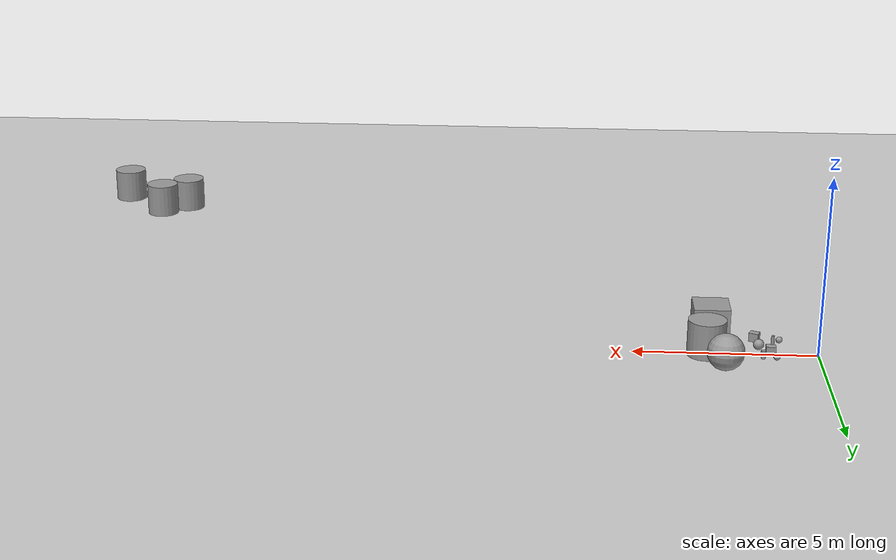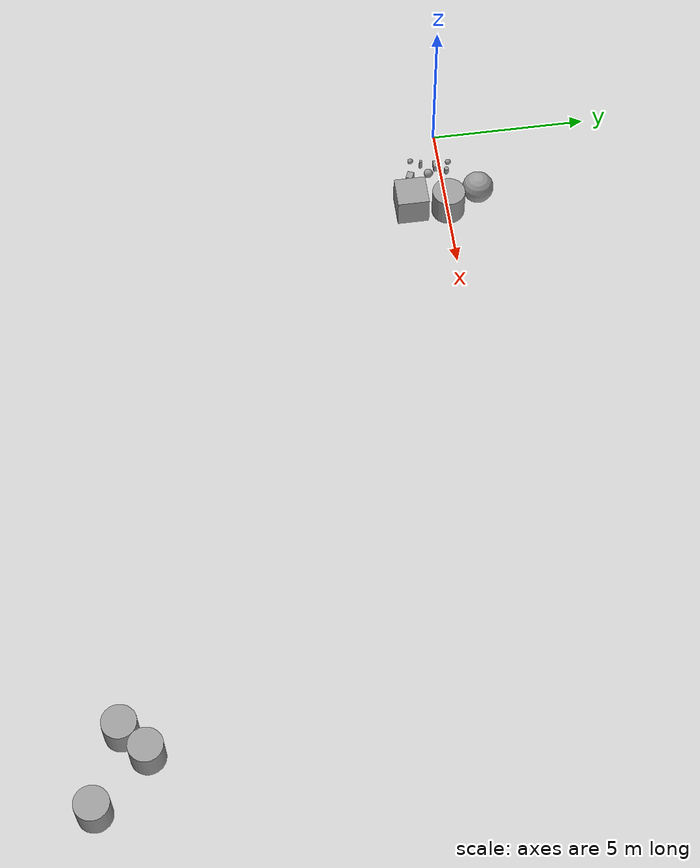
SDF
<sdf version="1.6">
 <world name="default">
  <model name="ground_plane">
   <static>1</static>
   <link name="link">
    <collision name="collision">
     <geometry><plane><normal>0 0 1</normal><size>100 100</size></plane></geometry>
     <surface>
      <contact><collide_bitmask>65535</collide_bitmask></contact>
      <friction><ode><mu>100</mu><mu2>50</mu2></ode></friction>
     </surface>
    </collision>
    <visual name="visual">
     <cast_shadows>0</cast_shadows>
     <geometry><plane><normal>0 0 1</normal><size>100 100</size></plane></geometry>
     <material>
      <script><uri>file://media/materials/scripts/gazebo.material</uri><name>Gazebo/Grey</name></script>
     </material>
    </visual>
   </link>
  </model>
  <light name="sun" type="directional">
   <pose>0 0 10 0 -0 0</pose>
   <diffuse>0.8 0.8 0.8 1</diffuse>
   <specular>0.2 0.2 0.2 1</specular>
   <attenuation>
    <range>1000</range>
    <constant>0.9</constant>
    <linear>0.01</linear>
    <quadratic>0.001</quadratic>
   </attenuation>
   <direction>-0.5 0.1 -0.9</direction>
  </light>
  <gravity>0 0 -9.8</gravity>
  <magnetic_field>6e-06 2.3e-05 -4.2e-05</magnetic_field>
  <atmosphere type="adiabatic"/>
  <physics name="default_physics" default="0" type="ode">
   <max_step_size>0.001</max_step_size>
   <real_time_factor>1</real_time_factor>
   <real_time_update_rate>1000</real_time_update_rate>
  </physics>
  <scene><ambient>0.4 0.4 0.4 1</ambient><background>0.7 0.7 0.7 1</background><shadows>1</shadows></scene>
  <audio><device>default</device></audio>
  <spherical_coordinates>
   <surface_model>EARTH_WGS84</surface_model>
   <latitude_deg>0</latitude_deg>
   <longitude_deg>0</longitude_deg>
   <elevation>0</elevation>
   <heading_deg>0</heading_deg>
  </spherical_coordinates>
  <model name="unit_cylinder">
   <pose>3.01515 0.015203 0.499996 3e-06 1e-06 -0</pose>
   <link name="link">
    <inertial>
     <mass>1</mass>
     <inertia><ixx>0.145833</ixx><ixy>0</ixy><ixz>0</ixz><iyy>0.145833</iyy><iyz>0</iyz><izz>0.125</izz></inertia>
    </inertial>
    <collision name="collision">
     <geometry><cylinder><radius>0.523115</radius><length>1</length></cylinder></geometry>
    </collision>
    <visual name="visual">
     <geometry><cylinder><radius>0.523115</radius><length>1</length></cylinder></geometry>
     <material>
      <script><name>Gazebo/Grey</name><uri>file://media/materials/scripts/gazebo.material</uri></script>
     </material>
    </visual>
   </link>
  </model>
  <model name="unit_box">
   <pose>2.82559 -1.15795 0.499995 -1e-05 0 0</pose>
   <link name="link">
    <inertial>
     <mass>1</mass>
     <inertia>
      <ixx>0.166667</ixx>
      <ixy>0</ixy>
      <ixz>0</ixz>
      <iyy>0.166667</iyy>
      <iyz>0</iyz>
      <izz>0.166667</izz>
     </inertia>
    </inertial>
    <collision name="collision"><geometry><box><size>1 1 1</size></box></geometry></collision>
    <visual name="visual">
     <geometry><box><size>1 1 1</size></box></geometry>
     <material>
      <script><name>Gazebo/Grey</name><uri>file://media/materials/scripts/gazebo.material</uri></script>
     </material>
    </visual>
   </link>
  </model>
  <model name="unit_sphere">
   <pose>2.59206 1.03969 0.5 0 -0 0</pose>
   <link name="link">
    <inertial>
     <mass>1</mass>
     <inertia><ixx>0.1</ixx><ixy>0</ixy><ixz>0</ixz><iyy>0.1</iyy><iyz>0</iyz><izz>0.1</izz></inertia>
    </inertial>
    <collision name="collision"><geometry><sphere><radius>0.5</radius></sphere></geometry></collision>
    <visual name="visual">
     <geometry><sphere><radius>0.5</radius></sphere></geometry>
     <material>
      <script><name>Gazebo/Grey</name><uri>file://media/materials/scripts/gazebo.material</uri></script>
     </material>
    </visual>
   </link>
  </model>
  <model name="unit_sphere_clone">
   <pose>1.56339 -0.40488 0.14675 0 -0 0</pose>
   <link name="link">
    <inertial>
     <mass>1</mass>
     <inertia><ixx>0.1</ixx><ixy>0</ixy><ixz>0</ixz><iyy>0.1</iyy><iyz>0</iyz><izz>0.1</izz></inertia>
    </inertial>
    <collision name="collision"><geometry><sphere><radius>0.14675</radius></sphere></geometry></collision>
    <visual name="visual">
     <geometry><sphere><radius>0.14675</radius></sphere></geometry>
     <material>
      <script><name>Gazebo/Grey</name><uri>file://media/materials/scripts/gazebo.material</uri></script>
     </material>
    </visual>
   </link>
  </model>
  <model name="unit_box_clone">
   <pose>1.27094 -0.096518 0.122257 2e-06 3e-06 3e-06</pose>
   <link name="link">
    <inertial>
     <mass>1</mass>
     <inertia>
      <ixx>0.166667</ixx>
      <ixy>0</ixy>
      <ixz>0</ixz>
      <iyy>0.166667</iyy>
      <iyz>0</iyz>
      <izz>0.166667</izz>
     </inertia>
    </inertial>
    <collision name="collision">
     <geometry><box><size>0.261008 0.212678 0.244512</size></box></geometry>
    </collision>
    <visual name="visual">
     <geometry><box><size>0.261008 0.212678 0.244512</size></box></geometry>
     <material>
      <script><name>Gazebo/Grey</name><uri>file://media/materials/scripts/gazebo.material</uri></script>
     </material>
    </visual>
   </link>
  </model>
  <model name="unit_cylinder_0">
   <pose>1.49695 0.201145 0.109767 0 0 -1e-06</pose>
   <link name="link">
    <inertial>
     <mass>1</mass>
     <inertia><ixx>0.145833</ixx><ixy>0</ixy><ixz>0</ixz><iyy>0.145833</iyy><iyz>0</iyz><izz>0.125</izz></inertia>
    </inertial>
    <collision name="collision">
     <geometry><cylinder><radius>0.0680165</radius><length>0.219535</length></cylinder></geometry>
    </collision>
    <visual name="visual">
     <geometry><cylinder><radius>0.0680165</radius><length>0.219535</length></cylinder></geometry>
     <material>
      <script><name>Gazebo/Grey</name><uri>file://media/materials/scripts/gazebo.material</uri></script>
     </material>
    </visual>
   </link>
  </model>
  <model name="unit_cylinder_1">
   <pose>20.2383 -10.9862 0.49999 0 -0 0.001835</pose>
   <link name="link">
    <inertial>
     <mass>1</mass>
     <inertia><ixx>0.145833</ixx><ixy>0</ixy><ixz>0</ixz><iyy>0.145833</iyy><iyz>0</iyz><izz>0.125</izz></inertia>
    </inertial>
    <collision name="collision">
     <geometry><cylinder><radius>0.5</radius><length>1</length></cylinder></geometry>
    </collision>
    <visual name="visual">
     <geometry><cylinder><radius>0.5</radius><length>1</length></cylinder></geometry>
     <material>
      <script><name>Gazebo/Grey</name><uri>file://media/materials/scripts/gazebo.material</uri></script>
     </material>
    </visual>
   </link>
  </model>
  <model name="unit_cylinder_2">
   <pose>21.6742 -12.528 0.499997 3e-06 2e-06 0</pose>
   <link name="link">
    <inertial>
     <mass>1</mass>
     <inertia><ixx>0.145833</ixx><ixy>0</ixy><ixz>0</ixz><iyy>0.145833</iyy><iyz>0</iyz><izz>0.125</izz></inertia>
    </inertial>
    <collision name="collision">
     <geometry><cylinder><radius>0.5</radius><length>1</length></cylinder></geometry>
    </collision>
    <visual name="visual">
     <geometry><cylinder><radius>0.5</radius><length>1</length></cylinder></geometry>
     <material>
      <script><name>Gazebo/Grey</name><uri>file://media/materials/scripts/gazebo.material</uri></script>
     </material>
    </visual>
   </link>
  </model>
  <model name="unit_sphere_clone_clone">
   <pose>1.14685 0.3064 0.095525 0 -0 0</pose>
   <link name="link">
    <inertial>
     <mass>1</mass>
     <inertia><ixx>0.1</ixx><ixy>0</ixy><ixz>0</ixz><iyy>0.1</iyy><iyz>0</iyz><izz>0.1</izz></inertia>
    </inertial>
    <collision name="collision"><geometry><sphere><radius>0.0955247</radius></sphere></geometry></collision>
    <visual name="visual">
     <geometry><sphere><radius>0.0955247</radius></sphere></geometry>
     <material>
      <script><name>Gazebo/Grey</name><uri>file://media/materials/scripts/gazebo.material</uri></script>
     </material>
    </visual>
   </link>
  </model>
  <model name="unit_cylinder_3">
   <pose>19.4877 -11.6472 0.499993 -3e-06 3e-06 0.00063</pose>
   <link name="link">
    <inertial>
     <mass>1</mass>
     <inertia><ixx>0.145833</ixx><ixy>0</ixy><ixz>0</ixz><iyy>0.145833</iyy><iyz>0</iyz><izz>0.125</izz></inertia>
    </inertial>
    <collision name="collision">
     <geometry><cylinder><radius>0.5</radius><length>1</length></cylinder></geometry>
    </collision>
    <visual name="visual">
     <geometry><cylinder><radius>0.5</radius><length>1</length></cylinder></geometry>
     <material>
      <script><name>Gazebo/Grey</name><uri>file://media/materials/scripts/gazebo.material</uri></script>
     </material>
    </visual>
   </link>
  </model>
  <model name="unit_cylinder_4">
   <pose>1.16461 -0.604409 0.162492 0 -0 0.00025</pose>
   <link name="link">
    <inertial>
     <mass>1</mass>
     <inertia><ixx>0.145833</ixx><ixy>0</ixy><ixz>0</ixz><iyy>0.145833</iyy><iyz>0</iyz><izz>0.125</izz></inertia>
    </inertial>
    <collision name="collision">
     <geometry><cylinder><radius>0.045587</radius><length>0.324993</length></cylinder></geometry>
    </collision>
    <visual name="visual">
     <geometry><cylinder><radius>0.045587</radius><length>0.324993</length></cylinder></geometry>
     <material>
      <script><name>Gazebo/Grey</name><uri>file://media/materials/scripts/gazebo.material</uri></script>
     </material>
    </visual>
   </link>
  </model>
  <model name="unit_box_clone_clone">
   <pose>1.6159 -1.01943 0.122257 3e-06 2e-06 -0.408207</pose>
   <link name="link">
    <inertial>
     <mass>1</mass>
     <inertia>
      <ixx>0.166667</ixx>
      <ixy>0</ixy>
      <ixz>0</ixz>
      <iyy>0.166667</iyy>
      <iyz>0</iyz>
      <izz>0.166667</izz>
     </inertia>
    </inertial>
    <collision name="collision">
     <geometry><box><size>0.261008 0.212678 0.244512</size></box></geometry>
    </collision>
    <visual name="visual">
     <geometry><box><size>0.261008 0.212678 0.244512</size></box></geometry>
     <material>
      <script><name>Gazebo/Grey</name><uri>file://media/materials/scripts/gazebo.material</uri></script>
     </material>
    </visual>
   </link>
  </model>
  <model name="unit_sphere_0">
   <pose>0.9502 -0.911604 0.089792 0 -0 0</pose>
   <link name="link">
    <inertial>
     <mass>1</mass>
     <inertia><ixx>0.1</ixx><ixy>0</ixy><ixz>0</ixz><iyy>0.1</iyy><iyz>0</iyz><izz>0.1</izz></inertia>
    </inertial>
    <collision name="collision"><geometry><sphere><radius>0.0897925</radius></sphere></geometry></collision>
    <visual name="visual">
     <geometry><sphere><radius>0.0897925</radius></sphere></geometry>
     <material>
      <script><name>Gazebo/Grey</name><uri>file://media/materials/scripts/gazebo.material</uri></script>
     </material>
    </visual>
   </link>
  </model>
 </world>
</sdf>
